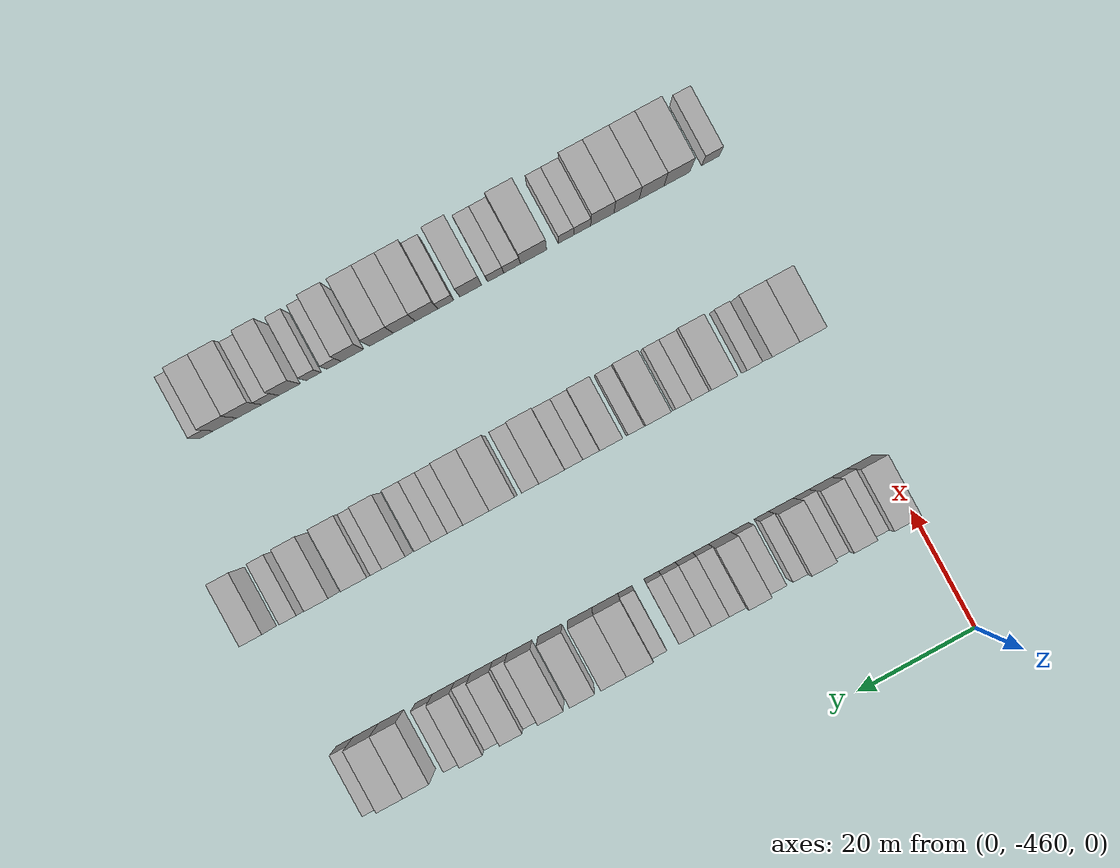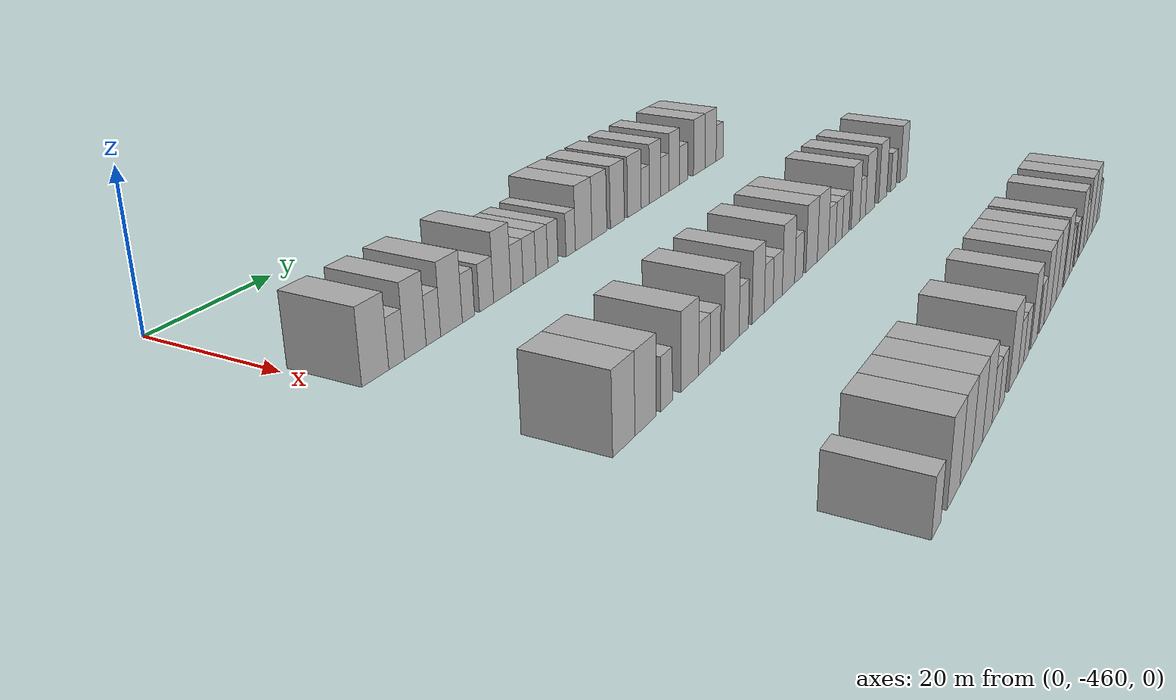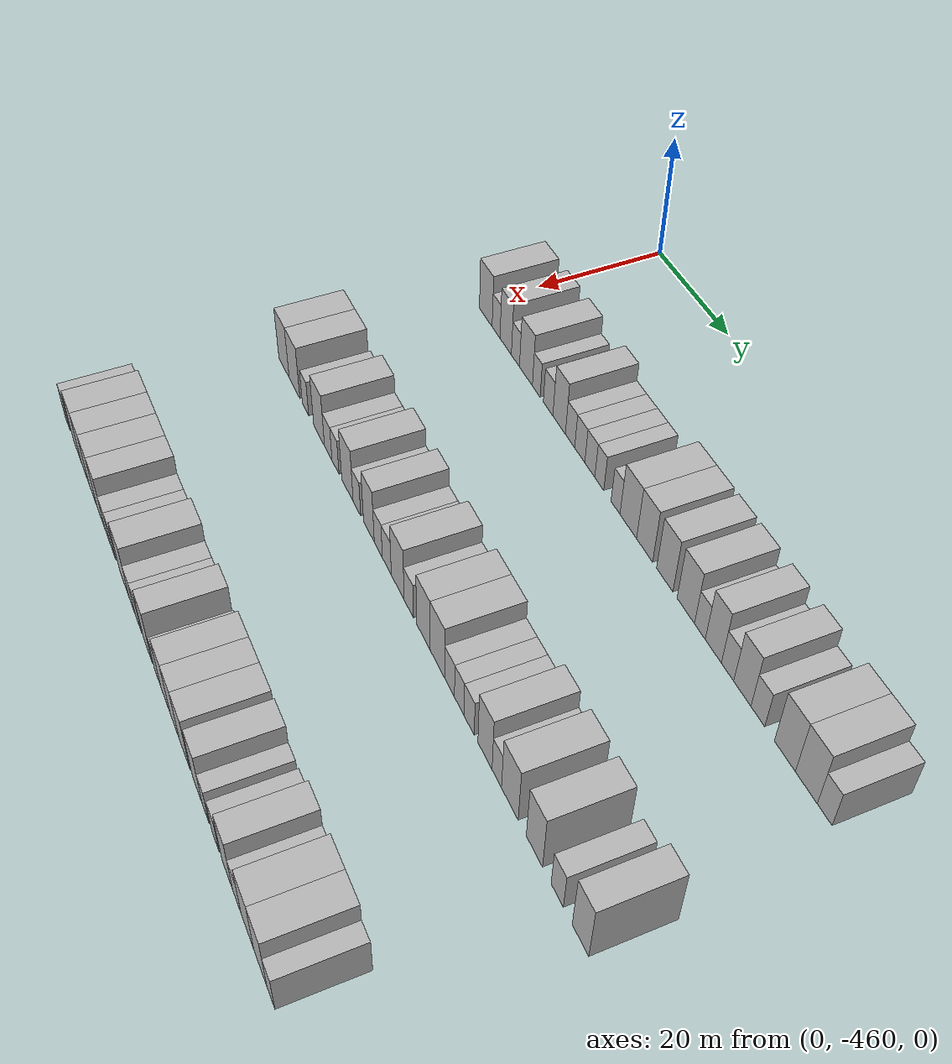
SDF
<sdf version="1.6">
 <world name="default">
  <model name="building_1">
   <static>1</static>
   <pose>25.0000 -456.7861 0 0.000000 0.000000 0.000000</pose>
   <link name="link">
    <pose>0 0 4.50 0 0 0</pose>
    <collision name="collision"><geometry><box><size>10.0000 4.4277 9.0000</size></box></geometry></collision>
    <visual name="visual">
     <cast_shadows>0</cast_shadows>
     <geometry><box><size>10.0000 4.4277 9.0000</size></box></geometry>
     <material>
      <script>
       <uri>model://HANNAS_wall/materials/scripts</uri>
       <uri>model://HANNAS_wall/materials/textures</uri>
       <name>vrc/HANNAS_wall</name>
      </script>
     </material>
    </visual>
   </link>
  </model>
  <model name="building_2">
   <static>1</static>
   <pose>25.0000 -453.2290 0 0.000000 0.000000 0.000000</pose>
   <link name="link">
    <pose>0 0 3.00 0 0 0</pose>
    <collision name="collision"><geometry><box><size>10.0000 2.6864 6.0000</size></box></geometry></collision>
    <visual name="visual">
     <cast_shadows>0</cast_shadows>
     <geometry><box><size>10.0000 2.6864 6.0000</size></box></geometry>
     <material>
      <script>
       <uri>model://HANNAS_wall/materials/scripts</uri>
       <uri>model://HANNAS_wall/materials/textures</uri>
       <name>vrc/HANNAS_wall</name>
      </script>
     </material>
    </visual>
   </link>
  </model>
  <model name="building_3">
   <static>1</static>
   <pose>25.0000 -449.9712 0 0.000000 0.000000 0.000000</pose>
   <link name="link">
    <pose>0 0 4.50 0 0 0</pose>
    <collision name="collision"><geometry><box><size>10.0000 3.8293 9.0000</size></box></geometry></collision>
    <visual name="visual">
     <cast_shadows>0</cast_shadows>
     <geometry><box><size>10.0000 3.8293 9.0000</size></box></geometry>
     <material>
      <script>
       <uri>model://HANNAS_wall/materials/scripts</uri>
       <uri>model://HANNAS_wall/materials/textures</uri>
       <name>vrc/HANNAS_wall</name>
      </script>
     </material>
    </visual>
   </link>
  </model>
  <model name="building_4">
   <static>1</static>
   <pose>25.0000 -446.7271 0 0.000000 0.000000 0.000000</pose>
   <link name="link">
    <pose>0 0 3.00 0 0 0</pose>
    <collision name="collision"><geometry><box><size>10.0000 2.6587 6.0000</size></box></geometry></collision>
    <visual name="visual">
     <cast_shadows>0</cast_shadows>
     <geometry><box><size>10.0000 2.6587 6.0000</size></box></geometry>
     <material>
      <script>
       <uri>model://HANNAS_wall/materials/scripts</uri>
       <uri>model://HANNAS_wall/materials/textures</uri>
       <name>vrc/HANNAS_wall</name>
      </script>
     </material>
    </visual>
   </link>
  </model>
  <model name="building_5">
   <static>1</static>
   <pose>25.0000 -443.3163 0 0.000000 0.000000 0.000000</pose>
   <link name="link">
    <pose>0 0 4.50 0 0 0</pose>
    <collision name="collision"><geometry><box><size>10.0000 4.1628 9.0000</size></box></geometry></collision>
    <visual name="visual">
     <cast_shadows>0</cast_shadows>
     <geometry><box><size>10.0000 4.1628 9.0000</size></box></geometry>
     <material>
      <script>
       <uri>model://HANNAS_wall/materials/scripts</uri>
       <uri>model://HANNAS_wall/materials/textures</uri>
       <name>vrc/HANNAS_wall</name>
      </script>
     </material>
    </visual>
   </link>
  </model>
  <model name="building_6">
   <static>1</static>
   <pose>25.0000 -440.0166 0 0.000000 0.000000 0.000000</pose>
   <link name="link">
    <pose>0 0 3.00 0 0 0</pose>
    <collision name="collision"><geometry><box><size>10.0000 2.4367 6.0000</size></box></geometry></collision>
    <visual name="visual">
     <cast_shadows>0</cast_shadows>
     <geometry><box><size>10.0000 2.4367 6.0000</size></box></geometry>
     <material>
      <script>
       <uri>model://HANNAS_wall/materials/scripts</uri>
       <uri>model://HANNAS_wall/materials/textures</uri>
       <name>vrc/HANNAS_wall</name>
      </script>
     </material>
    </visual>
   </link>
  </model>
  <model name="building_7">
   <static>1</static>
   <pose>25.0000 -436.3232 0 0.000000 0.000000 0.000000</pose>
   <link name="link">
    <pose>0 0 3.00 0 0 0</pose>
    <collision name="collision"><geometry><box><size>10.0000 2.9502 6.0000</size></box></geometry></collision>
    <visual name="visual">
     <cast_shadows>0</cast_shadows>
     <geometry><box><size>10.0000 2.9502 6.0000</size></box></geometry>
     <material>
      <script>
       <uri>model://HANNAS_wall/materials/scripts</uri>
       <uri>model://HANNAS_wall/materials/textures</uri>
       <name>vrc/HANNAS_wall</name>
      </script>
     </material>
    </visual>
   </link>
  </model>
  <model name="building_8">
   <static>1</static>
   <pose>25.0000 -432.9643 0 0.000000 0.000000 0.000000</pose>
   <link name="link">
    <pose>0 0 4.50 0 0 0</pose>
    <collision name="collision"><geometry><box><size>10.0000 3.7676 9.0000</size></box></geometry></collision>
    <visual name="visual">
     <cast_shadows>0</cast_shadows>
     <geometry><box><size>10.0000 3.7676 9.0000</size></box></geometry>
     <material>
      <script>
       <uri>model://HANNAS_wall/materials/scripts</uri>
       <uri>model://HANNAS_wall/materials/textures</uri>
       <name>vrc/HANNAS_wall</name>
      </script>
     </material>
    </visual>
   </link>
  </model>
  <model name="building_9">
   <static>1</static>
   <pose>25.0000 -429.7115 0 0.000000 0.000000 0.000000</pose>
   <link name="link">
    <pose>0 0 3.00 0 0 0</pose>
    <collision name="collision"><geometry><box><size>10.0000 2.7378 6.0000</size></box></geometry></collision>
    <visual name="visual">
     <cast_shadows>0</cast_shadows>
     <geometry><box><size>10.0000 2.7378 6.0000</size></box></geometry>
     <material>
      <script>
       <uri>model://HANNAS_wall/materials/scripts</uri>
       <uri>model://HANNAS_wall/materials/textures</uri>
       <name>vrc/HANNAS_wall</name>
      </script>
     </material>
    </visual>
   </link>
  </model>
  <model name="building_10">
   <static>1</static>
   <pose>25.0000 -426.8827 0 0.000000 0.000000 0.000000</pose>
   <link name="link">
    <pose>0 0 3.00 0 0 0</pose>
    <collision name="collision"><geometry><box><size>10.0000 2.9198 6.0000</size></box></geometry></collision>
    <visual name="visual">
     <cast_shadows>0</cast_shadows>
     <geometry><box><size>10.0000 2.9198 6.0000</size></box></geometry>
     <material>
      <script>
       <uri>model://HANNAS_wall/materials/scripts</uri>
       <uri>model://HANNAS_wall/materials/textures</uri>
       <name>vrc/HANNAS_wall</name>
      </script>
     </material>
    </visual>
   </link>
  </model>
  <model name="building_11">
   <static>1</static>
   <pose>25.0000 -424.0059 0 0.000000 0.000000 0.000000</pose>
   <link name="link">
    <pose>0 0 3.00 0 0 0</pose>
    <collision name="collision"><geometry><box><size>10.0000 2.8339 6.0000</size></box></geometry></collision>
    <visual name="visual">
     <cast_shadows>0</cast_shadows>
     <geometry><box><size>10.0000 2.8339 6.0000</size></box></geometry>
     <material>
      <script>
       <uri>model://HANNAS_wall/materials/scripts</uri>
       <uri>model://HANNAS_wall/materials/textures</uri>
       <name>vrc/HANNAS_wall</name>
      </script>
     </material>
    </visual>
   </link>
  </model>
  <model name="building_12">
   <static>1</static>
   <pose>25.0000 -421.3321 0 0.000000 0.000000 0.000000</pose>
   <link name="link">
    <pose>0 0 3.00 0 0 0</pose>
    <collision name="collision"><geometry><box><size>10.0000 2.5138 6.0000</size></box></geometry></collision>
    <visual name="visual">
     <cast_shadows>0</cast_shadows>
     <geometry><box><size>10.0000 2.5138 6.0000</size></box></geometry>
     <material>
      <script>
       <uri>model://HANNAS_wall/materials/scripts</uri>
       <uri>model://HANNAS_wall/materials/textures</uri>
       <name>vrc/HANNAS_wall</name>
      </script>
     </material>
    </visual>
   </link>
  </model>
  <model name="building_13">
   <static>1</static>
   <pose>25.0000 -416.8680 0 0.000000 0.000000 0.000000</pose>
   <link name="link">
    <pose>0 0 3.00 0 0 0</pose>
    <collision name="collision"><geometry><box><size>10.0000 2.4144 6.0000</size></box></geometry></collision>
    <visual name="visual">
     <cast_shadows>0</cast_shadows>
     <geometry><box><size>10.0000 2.4144 6.0000</size></box></geometry>
     <material>
      <script>
       <uri>model://HANNAS_wall/materials/scripts</uri>
       <uri>model://HANNAS_wall/materials/textures</uri>
       <name>vrc/HANNAS_wall</name>
      </script>
     </material>
    </visual>
   </link>
  </model>
  <model name="building_14">
   <static>1</static>
   <pose>25.0000 -413.4631 0 0.000000 0.000000 0.000000</pose>
   <link name="link">
    <pose>0 0 4.50 0 0 0</pose>
    <collision name="collision"><geometry><box><size>10.0000 4.3954 9.0000</size></box></geometry></collision>
    <visual name="visual">
     <cast_shadows>0</cast_shadows>
     <geometry><box><size>10.0000 4.3954 9.0000</size></box></geometry>
     <material>
      <script>
       <uri>model://HANNAS_wall/materials/scripts</uri>
       <uri>model://HANNAS_wall/materials/textures</uri>
       <name>vrc/HANNAS_wall</name>
      </script>
     </material>
    </visual>
   </link>
  </model>
  <model name="building_15">
   <static>1</static>
   <pose>25.0000 -409.2064 0 0.000000 0.000000 0.000000</pose>
   <link name="link">
    <pose>0 0 4.50 0 0 0</pose>
    <collision name="collision"><geometry><box><size>10.0000 4.1180 9.0000</size></box></geometry></collision>
    <visual name="visual">
     <cast_shadows>0</cast_shadows>
     <geometry><box><size>10.0000 4.1180 9.0000</size></box></geometry>
     <material>
      <script>
       <uri>model://HANNAS_wall/materials/scripts</uri>
       <uri>model://HANNAS_wall/materials/textures</uri>
       <name>vrc/HANNAS_wall</name>
      </script>
     </material>
    </visual>
   </link>
  </model>
  <model name="building_16">
   <static>1</static>
   <pose>25.0000 -404.1245 0 0.000000 0.000000 0.000000</pose>
   <link name="link">
    <pose>0 0 4.50 0 0 0</pose>
    <collision name="collision"><geometry><box><size>10.0000 4.0457 9.0000</size></box></geometry></collision>
    <visual name="visual">
     <cast_shadows>0</cast_shadows>
     <geometry><box><size>10.0000 4.0457 9.0000</size></box></geometry>
     <material>
      <script>
       <uri>model://HANNAS_wall/materials/scripts</uri>
       <uri>model://HANNAS_wall/materials/textures</uri>
       <name>vrc/HANNAS_wall</name>
      </script>
     </material>
    </visual>
   </link>
  </model>
  <model name="building_17">
   <static>1</static>
   <pose>25.0000 -399.0216 0 0.000000 0.000000 0.000000</pose>
   <link name="link">
    <pose>0 0 4.50 0 0 0</pose>
    <collision name="collision"><geometry><box><size>10.0000 4.1601 9.0000</size></box></geometry></collision>
    <visual name="visual">
     <cast_shadows>0</cast_shadows>
     <geometry><box><size>10.0000 4.1601 9.0000</size></box></geometry>
     <material>
      <script>
       <uri>model://HANNAS_wall/materials/scripts</uri>
       <uri>model://HANNAS_wall/materials/textures</uri>
       <name>vrc/HANNAS_wall</name>
      </script>
     </material>
    </visual>
   </link>
  </model>
  <model name="building_18">
   <static>1</static>
   <pose>25.0000 -395.6801 0 0.000000 0.000000 0.000000</pose>
   <link name="link">
    <pose>0 0 3.00 0 0 0</pose>
    <collision name="collision"><geometry><box><size>10.0000 2.5229 6.0000</size></box></geometry></collision>
    <visual name="visual">
     <cast_shadows>0</cast_shadows>
     <geometry><box><size>10.0000 2.5229 6.0000</size></box></geometry>
     <material>
      <script>
       <uri>model://HANNAS_wall/materials/scripts</uri>
       <uri>model://HANNAS_wall/materials/textures</uri>
       <name>vrc/HANNAS_wall</name>
      </script>
     </material>
    </visual>
   </link>
  </model>
  <model name="building_19">
   <static>1</static>
   <pose>25.0000 -392.5914 0 0.000000 0.000000 0.000000</pose>
   <link name="link">
    <pose>0 0 4.50 0 0 0</pose>
    <collision name="collision"><geometry><box><size>10.0000 3.6545 9.0000</size></box></geometry></collision>
    <visual name="visual">
     <cast_shadows>0</cast_shadows>
     <geometry><box><size>10.0000 3.6545 9.0000</size></box></geometry>
     <material>
      <script>
       <uri>model://HANNAS_wall/materials/scripts</uri>
       <uri>model://HANNAS_wall/materials/textures</uri>
       <name>vrc/HANNAS_wall</name>
      </script>
     </material>
    </visual>
   </link>
  </model>
  <model name="building_20">
   <static>1</static>
   <pose>25.0000 -389.3971 0 0.000000 0.000000 0.000000</pose>
   <link name="link">
    <pose>0 0 3.00 0 0 0</pose>
    <collision name="collision"><geometry><box><size>10.0000 2.7343 6.0000</size></box></geometry></collision>
    <visual name="visual">
     <cast_shadows>0</cast_shadows>
     <geometry><box><size>10.0000 2.7343 6.0000</size></box></geometry>
     <material>
      <script>
       <uri>model://HANNAS_wall/materials/scripts</uri>
       <uri>model://HANNAS_wall/materials/textures</uri>
       <name>vrc/HANNAS_wall</name>
      </script>
     </material>
    </visual>
   </link>
  </model>
  <model name="building_21">
   <static>1</static>
   <pose>25.0000 -386.1564 0 0.000000 0.000000 0.000000</pose>
   <link name="link">
    <pose>0 0 4.50 0 0 0</pose>
    <collision name="collision"><geometry><box><size>10.0000 3.7471 9.0000</size></box></geometry></collision>
    <visual name="visual">
     <cast_shadows>0</cast_shadows>
     <geometry><box><size>10.0000 3.7471 9.0000</size></box></geometry>
     <material>
      <script>
       <uri>model://HANNAS_wall/materials/scripts</uri>
       <uri>model://HANNAS_wall/materials/textures</uri>
       <name>vrc/HANNAS_wall</name>
      </script>
     </material>
    </visual>
   </link>
  </model>
  <model name="building_22">
   <static>1</static>
   <pose>25.0000 -382.8267 0 0.000000 0.000000 0.000000</pose>
   <link name="link">
    <pose>0 0 3.00 0 0 0</pose>
    <collision name="collision"><geometry><box><size>10.0000 2.9122 6.0000</size></box></geometry></collision>
    <visual name="visual">
     <cast_shadows>0</cast_shadows>
     <geometry><box><size>10.0000 2.9122 6.0000</size></box></geometry>
     <material>
      <script>
       <uri>model://HANNAS_wall/materials/scripts</uri>
       <uri>model://HANNAS_wall/materials/textures</uri>
       <name>vrc/HANNAS_wall</name>
      </script>
     </material>
    </visual>
   </link>
  </model>
  <model name="building_23">
   <static>1</static>
   <pose>25.0000 -377.2494 0 0.000000 0.000000 0.000000</pose>
   <link name="link">
    <pose>0 0 4.50 0 0 0</pose>
    <collision name="collision"><geometry><box><size>10.0000 4.2425 9.0000</size></box></geometry></collision>
    <visual name="visual">
     <cast_shadows>0</cast_shadows>
     <geometry><box><size>10.0000 4.2425 9.0000</size></box></geometry>
     <material>
      <script>
       <uri>model://HANNAS_wall/materials/scripts</uri>
       <uri>model://HANNAS_wall/materials/textures</uri>
       <name>vrc/HANNAS_wall</name>
      </script>
     </material>
    </visual>
   </link>
  </model>
  <model name="building_24">
   <static>1</static>
   <pose>25.0000 -372.9851 0 0.000000 0.000000 0.000000</pose>
   <link name="link">
    <pose>0 0 4.50 0 0 0</pose>
    <collision name="collision"><geometry><box><size>10.0000 4.2860 9.0000</size></box></geometry></collision>
    <visual name="visual">
     <cast_shadows>0</cast_shadows>
     <geometry><box><size>10.0000 4.2860 9.0000</size></box></geometry>
     <material>
      <script>
       <uri>model://HANNAS_wall/materials/scripts</uri>
       <uri>model://HANNAS_wall/materials/textures</uri>
       <name>vrc/HANNAS_wall</name>
      </script>
     </material>
    </visual>
   </link>
  </model>
  <model name="building_25">
   <static>1</static>
   <pose>25.0000 -369.4318 0 0.000000 0.000000 0.000000</pose>
   <link name="link">
    <pose>0 0 3.00 0 0 0</pose>
    <collision name="collision"><geometry><box><size>10.0000 2.8206 6.0000</size></box></geometry></collision>
    <visual name="visual">
     <cast_shadows>0</cast_shadows>
     <geometry><box><size>10.0000 2.8206 6.0000</size></box></geometry>
     <material>
      <script>
       <uri>model://HANNAS_wall/materials/scripts</uri>
       <uri>model://HANNAS_wall/materials/textures</uri>
       <name>vrc/HANNAS_wall</name>
      </script>
     </material>
    </visual>
   </link>
  </model>
  <model name="building_220">
   <static>1</static>
   <pose>55.0000 -457.7945 0 0.000000 0.000000 0.000000</pose>
   <link name="link">
    <pose>0 0 4.50 0 0 0</pose>
    <collision name="collision"><geometry><box><size>10.0000 4.4110 9.0000</size></box></geometry></collision>
    <visual name="visual">
     <cast_shadows>0</cast_shadows>
     <geometry><box><size>10.0000 4.4110 9.0000</size></box></geometry>
     <material>
      <script>
       <uri>model://HANNAS_wall/materials/scripts</uri>
       <uri>model://HANNAS_wall/materials/textures</uri>
       <name>vrc/HANNAS_wall</name>
      </script>
     </material>
    </visual>
   </link>
  </model>
  <model name="building_221">
   <static>1</static>
   <pose>55.0000 -453.3578 0 0.000000 0.000000 0.000000</pose>
   <link name="link">
    <pose>0 0 4.50 0 0 0</pose>
    <collision name="collision"><geometry><box><size>10.0000 4.4624 9.0000</size></box></geometry></collision>
    <visual name="visual">
     <cast_shadows>0</cast_shadows>
     <geometry><box><size>10.0000 4.4624 9.0000</size></box></geometry>
     <material>
      <script>
       <uri>model://HANNAS_wall/materials/scripts</uri>
       <uri>model://HANNAS_wall/materials/textures</uri>
       <name>vrc/HANNAS_wall</name>
      </script>
     </material>
    </visual>
   </link>
  </model>
  <model name="building_222">
   <static>1</static>
   <pose>55.0000 -448.8426 0 0.000000 0.000000 0.000000</pose>
   <link name="link">
    <pose>0 0 3.00 0 0 0</pose>
    <collision name="collision"><geometry><box><size>10.0000 2.5679 6.0000</size></box></geometry></collision>
    <visual name="visual">
     <cast_shadows>0</cast_shadows>
     <geometry><box><size>10.0000 2.5679 6.0000</size></box></geometry>
     <material>
      <script>
       <uri>model://HANNAS_wall/materials/scripts</uri>
       <uri>model://HANNAS_wall/materials/textures</uri>
       <name>vrc/HANNAS_wall</name>
      </script>
     </material>
    </visual>
   </link>
  </model>
  <model name="building_223">
   <static>1</static>
   <pose>55.0000 -443.4458 0 0.000000 0.000000 0.000000</pose>
   <link name="link">
    <pose>0 0 4.50 0 0 0</pose>
    <collision name="collision"><geometry><box><size>10.0000 4.2258 9.0000</size></box></geometry></collision>
    <visual name="visual">
     <cast_shadows>0</cast_shadows>
     <geometry><box><size>10.0000 4.2258 9.0000</size></box></geometry>
     <material>
      <script>
       <uri>model://HANNAS_wall/materials/scripts</uri>
       <uri>model://HANNAS_wall/materials/textures</uri>
       <name>vrc/HANNAS_wall</name>
      </script>
     </material>
    </visual>
   </link>
  </model>
  <model name="building_224">
   <static>1</static>
   <pose>55.0000 -439.9051 0 0.000000 0.000000 0.000000</pose>
   <link name="link">
    <pose>0 0 3.00 0 0 0</pose>
    <collision name="collision"><geometry><box><size>10.0000 2.8556 6.0000</size></box></geometry></collision>
    <visual name="visual">
     <cast_shadows>0</cast_shadows>
     <geometry><box><size>10.0000 2.8556 6.0000</size></box></geometry>
     <material>
      <script>
       <uri>model://HANNAS_wall/materials/scripts</uri>
       <uri>model://HANNAS_wall/materials/textures</uri>
       <name>vrc/HANNAS_wall</name>
      </script>
     </material>
    </visual>
   </link>
  </model>
  <model name="building_225">
   <static>1</static>
   <pose>55.0000 -437.1600 0 0.000000 0.000000 0.000000</pose>
   <link name="link">
    <pose>0 0 3.00 0 0 0</pose>
    <collision name="collision"><geometry><box><size>10.0000 2.6345 6.0000</size></box></geometry></collision>
    <visual name="visual">
     <cast_shadows>0</cast_shadows>
     <geometry><box><size>10.0000 2.6345 6.0000</size></box></geometry>
     <material>
      <script>
       <uri>model://HANNAS_wall/materials/scripts</uri>
       <uri>model://HANNAS_wall/materials/textures</uri>
       <name>vrc/HANNAS_wall</name>
      </script>
     </material>
    </visual>
   </link>
  </model>
  <model name="building_226">
   <static>1</static>
   <pose>55.0000 -432.7730 0 0.000000 0.000000 0.000000</pose>
   <link name="link">
    <pose>0 0 4.50 0 0 0</pose>
    <collision name="collision"><geometry><box><size>10.0000 4.1395 9.0000</size></box></geometry></collision>
    <visual name="visual">
     <cast_shadows>0</cast_shadows>
     <geometry><box><size>10.0000 4.1395 9.0000</size></box></geometry>
     <material>
      <script>
       <uri>model://HANNAS_wall/materials/scripts</uri>
       <uri>model://HANNAS_wall/materials/textures</uri>
       <name>vrc/HANNAS_wall</name>
      </script>
     </material>
    </visual>
   </link>
  </model>
  <model name="building_227">
   <static>1</static>
   <pose>55.0000 -429.3538 0 0.000000 0.000000 0.000000</pose>
   <link name="link">
    <pose>0 0 3.00 0 0 0</pose>
    <collision name="collision"><geometry><box><size>10.0000 2.6989 6.0000</size></box></geometry></collision>
    <visual name="visual">
     <cast_shadows>0</cast_shadows>
     <geometry><box><size>10.0000 2.6989 6.0000</size></box></geometry>
     <material>
      <script>
       <uri>model://HANNAS_wall/materials/scripts</uri>
       <uri>model://HANNAS_wall/materials/textures</uri>
       <name>vrc/HANNAS_wall</name>
      </script>
     </material>
    </visual>
   </link>
  </model>
  <model name="building_228">
   <static>1</static>
   <pose>55.0000 -425.1554 0 0.000000 0.000000 0.000000</pose>
   <link name="link">
    <pose>0 0 4.50 0 0 0</pose>
    <collision name="collision"><geometry><box><size>10.0000 3.6978 9.0000</size></box></geometry></collision>
    <visual name="visual">
     <cast_shadows>0</cast_shadows>
     <geometry><box><size>10.0000 3.6978 9.0000</size></box></geometry>
     <material>
      <script>
       <uri>model://HANNAS_wall/materials/scripts</uri>
       <uri>model://HANNAS_wall/materials/textures</uri>
       <name>vrc/HANNAS_wall</name>
      </script>
     </material>
    </visual>
   </link>
  </model>
  <model name="building_229">
   <static>1</static>
   <pose>55.0000 -421.9440 0 0.000000 0.000000 0.000000</pose>
   <link name="link">
    <pose>0 0 3.00 0 0 0</pose>
    <collision name="collision"><geometry><box><size>10.0000 2.7250 6.0000</size></box></geometry></collision>
    <visual name="visual">
     <cast_shadows>0</cast_shadows>
     <geometry><box><size>10.0000 2.7250 6.0000</size></box></geometry>
     <material>
      <script>
       <uri>model://HANNAS_wall/materials/scripts</uri>
       <uri>model://HANNAS_wall/materials/textures</uri>
       <name>vrc/HANNAS_wall</name>
      </script>
     </material>
    </visual>
   </link>
  </model>
  <model name="building_230">
   <static>1</static>
   <pose>55.0000 -419.0939 0 0.000000 0.000000 0.000000</pose>
   <link name="link">
    <pose>0 0 3.00 0 0 0</pose>
    <collision name="collision"><geometry><box><size>10.0000 2.9752 6.0000</size></box></geometry></collision>
    <visual name="visual">
     <cast_shadows>0</cast_shadows>
     <geometry><box><size>10.0000 2.9752 6.0000</size></box></geometry>
     <material>
      <script>
       <uri>model://HANNAS_wall/materials/scripts</uri>
       <uri>model://HANNAS_wall/materials/textures</uri>
       <name>vrc/HANNAS_wall</name>
      </script>
     </material>
    </visual>
   </link>
  </model>
  <model name="building_231">
   <static>1</static>
   <pose>55.0000 -415.5276 0 0.000000 0.000000 0.000000</pose>
   <link name="link">
    <pose>0 0 4.50 0 0 0</pose>
    <collision name="collision"><geometry><box><size>10.0000 4.1574 9.0000</size></box></geometry></collision>
    <visual name="visual">
     <cast_shadows>0</cast_shadows>
     <geometry><box><size>10.0000 4.1574 9.0000</size></box></geometry>
     <material>
      <script>
       <uri>model://HANNAS_wall/materials/scripts</uri>
       <uri>model://HANNAS_wall/materials/textures</uri>
       <name>vrc/HANNAS_wall</name>
      </script>
     </material>
    </visual>
   </link>
  </model>
  <model name="building_232">
   <static>1</static>
   <pose>55.0000 -411.9858 0 0.000000 0.000000 0.000000</pose>
   <link name="link">
    <pose>0 0 3.00 0 0 0</pose>
    <collision name="collision"><geometry><box><size>10.0000 2.9262 6.0000</size></box></geometry></collision>
    <visual name="visual">
     <cast_shadows>0</cast_shadows>
     <geometry><box><size>10.0000 2.9262 6.0000</size></box></geometry>
     <material>
      <script>
       <uri>model://HANNAS_wall/materials/scripts</uri>
       <uri>model://HANNAS_wall/materials/textures</uri>
       <name>vrc/HANNAS_wall</name>
      </script>
     </material>
    </visual>
   </link>
  </model>
  <model name="building_233">
   <static>1</static>
   <pose>55.0000 -407.4648 0 0.000000 0.000000 0.000000</pose>
   <link name="link">
    <pose>0 0 4.50 0 0 0</pose>
    <collision name="collision"><geometry><box><size>10.0000 4.1158 9.0000</size></box></geometry></collision>
    <visual name="visual">
     <cast_shadows>0</cast_shadows>
     <geometry><box><size>10.0000 4.1158 9.0000</size></box></geometry>
     <material>
      <script>
       <uri>model://HANNAS_wall/materials/scripts</uri>
       <uri>model://HANNAS_wall/materials/textures</uri>
       <name>vrc/HANNAS_wall</name>
      </script>
     </material>
    </visual>
   </link>
  </model>
  <model name="building_234">
   <static>1</static>
   <pose>55.0000 -403.3029 0 0.000000 0.000000 0.000000</pose>
   <link name="link">
    <pose>0 0 4.50 0 0 0</pose>
    <collision name="collision"><geometry><box><size>10.0000 4.2080 9.0000</size></box></geometry></collision>
    <visual name="visual">
     <cast_shadows>0</cast_shadows>
     <geometry><box><size>10.0000 4.2080 9.0000</size></box></geometry>
     <material>
      <script>
       <uri>model://HANNAS_wall/materials/scripts</uri>
       <uri>model://HANNAS_wall/materials/textures</uri>
       <name>vrc/HANNAS_wall</name>
      </script>
     </material>
    </visual>
   </link>
  </model>
  <model name="building_235">
   <static>1</static>
   <pose>55.0000 -399.7705 0 0.000000 0.000000 0.000000</pose>
   <link name="link">
    <pose>0 0 3.00 0 0 0</pose>
    <collision name="collision"><geometry><box><size>10.0000 2.8567 6.0000</size></box></geometry></collision>
    <visual name="visual">
     <cast_shadows>0</cast_shadows>
     <geometry><box><size>10.0000 2.8567 6.0000</size></box></geometry>
     <material>
      <script>
       <uri>model://HANNAS_wall/materials/scripts</uri>
       <uri>model://HANNAS_wall/materials/textures</uri>
       <name>vrc/HANNAS_wall</name>
      </script>
     </material>
    </visual>
   </link>
  </model>
  <model name="building_236">
   <static>1</static>
   <pose>55.0000 -396.9990 0 0.000000 0.000000 0.000000</pose>
   <link name="link">
    <pose>0 0 3.00 0 0 0</pose>
    <collision name="collision"><geometry><box><size>10.0000 2.6861 6.0000</size></box></geometry></collision>
    <visual name="visual">
     <cast_shadows>0</cast_shadows>
     <geometry><box><size>10.0000 2.6861 6.0000</size></box></geometry>
     <material>
      <script>
       <uri>model://HANNAS_wall/materials/scripts</uri>
       <uri>model://HANNAS_wall/materials/textures</uri>
       <name>vrc/HANNAS_wall</name>
      </script>
     </material>
    </visual>
   </link>
  </model>
  <model name="building_237">
   <static>1</static>
   <pose>55.0000 -394.2551 0 0.000000 0.000000 0.000000</pose>
   <link name="link">
    <pose>0 0 3.00 0 0 0</pose>
    <collision name="collision"><geometry><box><size>10.0000 2.8019 6.0000</size></box></geometry></collision>
    <visual name="visual">
     <cast_shadows>0</cast_shadows>
     <geometry><box><size>10.0000 2.8019 6.0000</size></box></geometry>
     <material>
      <script>
       <uri>model://HANNAS_wall/materials/scripts</uri>
       <uri>model://HANNAS_wall/materials/textures</uri>
       <name>vrc/HANNAS_wall</name>
      </script>
     </material>
    </visual>
   </link>
  </model>
  <model name="building_238">
   <static>1</static>
   <pose>55.0000 -389.9732 0 0.000000 0.000000 0.000000</pose>
   <link name="link">
    <pose>0 0 4.50 0 0 0</pose>
    <collision name="collision"><geometry><box><size>10.0000 3.7619 9.0000</size></box></geometry></collision>
    <visual name="visual">
     <cast_shadows>0</cast_shadows>
     <geometry><box><size>10.0000 3.7619 9.0000</size></box></geometry>
     <material>
      <script>
       <uri>model://HANNAS_wall/materials/scripts</uri>
       <uri>model://HANNAS_wall/materials/textures</uri>
       <name>vrc/HANNAS_wall</name>
      </script>
     </material>
    </visual>
   </link>
  </model>
  <model name="building_239">
   <static>1</static>
   <pose>55.0000 -386.8666 0 0.000000 0.000000 0.000000</pose>
   <link name="link">
    <pose>0 0 3.00 0 0 0</pose>
    <collision name="collision"><geometry><box><size>10.0000 2.4513 6.0000</size></box></geometry></collision>
    <visual name="visual">
     <cast_shadows>0</cast_shadows>
     <geometry><box><size>10.0000 2.4513 6.0000</size></box></geometry>
     <material>
      <script>
       <uri>model://HANNAS_wall/materials/scripts</uri>
       <uri>model://HANNAS_wall/materials/textures</uri>
       <name>vrc/HANNAS_wall</name>
      </script>
     </material>
    </visual>
   </link>
  </model>
  <model name="building_240">
   <static>1</static>
   <pose>55.0000 -383.5284 0 0.000000 0.000000 0.000000</pose>
   <link name="link">
    <pose>0 0 4.50 0 0 0</pose>
    <collision name="collision"><geometry><box><size>10.0000 4.2251 9.0000</size></box></geometry></collision>
    <visual name="visual">
     <cast_shadows>0</cast_shadows>
     <geometry><box><size>10.0000 4.2251 9.0000</size></box></geometry>
     <material>
      <script>
       <uri>model://HANNAS_wall/materials/scripts</uri>
       <uri>model://HANNAS_wall/materials/textures</uri>
       <name>vrc/HANNAS_wall</name>
      </script>
     </material>
    </visual>
   </link>
  </model>
  <model name="building_241">
   <static>1</static>
   <pose>55.0000 -377.4638 0 0.000000 0.000000 0.000000</pose>
   <link name="link">
    <pose>0 0 4.50 0 0 0</pose>
    <collision name="collision"><geometry><box><size>10.0000 3.9042 9.0000</size></box></geometry></collision>
    <visual name="visual">
     <cast_shadows>0</cast_shadows>
     <geometry><box><size>10.0000 3.9042 9.0000</size></box></geometry>
     <material>
      <script>
       <uri>model://HANNAS_wall/materials/scripts</uri>
       <uri>model://HANNAS_wall/materials/textures</uri>
       <name>vrc/HANNAS_wall</name>
      </script>
     </material>
    </visual>
   </link>
  </model>
  <model name="building_242">
   <static>1</static>
   <pose>55.0000 -372.1030 0 0.000000 0.000000 0.000000</pose>
   <link name="link">
    <pose>0 0 3.00 0 0 0</pose>
    <collision name="collision"><geometry><box><size>10.0000 2.8173 6.0000</size></box></geometry></collision>
    <visual name="visual">
     <cast_shadows>0</cast_shadows>
     <geometry><box><size>10.0000 2.8173 6.0000</size></box></geometry>
     <material>
      <script>
       <uri>model://HANNAS_wall/materials/scripts</uri>
       <uri>model://HANNAS_wall/materials/textures</uri>
       <name>vrc/HANNAS_wall</name>
      </script>
     </material>
    </visual>
   </link>
  </model>
  <model name="building_243">
   <static>1</static>
   <pose>55.0000 -366.8706 0 0.000000 0.000000 0.000000</pose>
   <link name="link">
    <pose>0 0 4.50 0 0 0</pose>
    <collision name="collision"><geometry><box><size>10.0000 3.6475 9.0000</size></box></geometry></collision>
    <visual name="visual">
     <cast_shadows>0</cast_shadows>
     <geometry><box><size>10.0000 3.6475 9.0000</size></box></geometry>
     <material>
      <script>
       <uri>model://HANNAS_wall/materials/scripts</uri>
       <uri>model://HANNAS_wall/materials/textures</uri>
       <name>vrc/HANNAS_wall</name>
      </script>
     </material>
    </visual>
   </link>
  </model>
  <model name="building_448">
   <static>1</static>
   <pose>85.0000 -458.5285 0 0.000000 0.000000 0.000000</pose>
   <link name="link">
    <pose>0 0 3.00 0 0 0</pose>
    <collision name="collision"><geometry><box><size>10.0000 2.9429 6.0000</size></box></geometry></collision>
    <visual name="visual">
     <cast_shadows>0</cast_shadows>
     <geometry><box><size>10.0000 2.9429 6.0000</size></box></geometry>
     <material>
      <script>
       <uri>model://HANNAS_wall/materials/scripts</uri>
       <uri>model://HANNAS_wall/materials/textures</uri>
       <name>vrc/HANNAS_wall</name>
      </script>
     </material>
    </visual>
   </link>
  </model>
  <model name="building_449">
   <static>1</static>
   <pose>85.0000 -452.8520 0 0.000000 0.000000 0.000000</pose>
   <link name="link">
    <pose>0 0 4.50 0 0 0</pose>
    <collision name="collision"><geometry><box><size>10.0000 4.4103 9.0000</size></box></geometry></collision>
    <visual name="visual">
     <cast_shadows>0</cast_shadows>
     <geometry><box><size>10.0000 4.4103 9.0000</size></box></geometry>
     <material>
      <script>
       <uri>model://HANNAS_wall/materials/scripts</uri>
       <uri>model://HANNAS_wall/materials/textures</uri>
       <name>vrc/HANNAS_wall</name>
      </script>
     </material>
    </visual>
   </link>
  </model>
  <model name="building_450">
   <static>1</static>
   <pose>85.0000 -448.5508 0 0.000000 0.000000 0.000000</pose>
   <link name="link">
    <pose>0 0 4.50 0 0 0</pose>
    <collision name="collision"><geometry><box><size>10.0000 4.1920 9.0000</size></box></geometry></collision>
    <visual name="visual">
     <cast_shadows>0</cast_shadows>
     <geometry><box><size>10.0000 4.1920 9.0000</size></box></geometry>
     <material>
      <script>
       <uri>model://HANNAS_wall/materials/scripts</uri>
       <uri>model://HANNAS_wall/materials/textures</uri>
       <name>vrc/HANNAS_wall</name>
      </script>
     </material>
    </visual>
   </link>
  </model>
  <model name="building_451">
   <static>1</static>
   <pose>85.0000 -444.3164 0 0.000000 0.000000 0.000000</pose>
   <link name="link">
    <pose>0 0 4.50 0 0 0</pose>
    <collision name="collision"><geometry><box><size>10.0000 4.2768 9.0000</size></box></geometry></collision>
    <visual name="visual">
     <cast_shadows>0</cast_shadows>
     <geometry><box><size>10.0000 4.2768 9.0000</size></box></geometry>
     <material>
      <script>
       <uri>model://HANNAS_wall/materials/scripts</uri>
       <uri>model://HANNAS_wall/materials/textures</uri>
       <name>vrc/HANNAS_wall</name>
      </script>
     </material>
    </visual>
   </link>
  </model>
  <model name="building_452">
   <static>1</static>
   <pose>85.0000 -440.2115 0 0.000000 0.000000 0.000000</pose>
   <link name="link">
    <pose>0 0 4.50 0 0 0</pose>
    <collision name="collision"><geometry><box><size>10.0000 3.9330 9.0000</size></box></geometry></collision>
    <visual name="visual">
     <cast_shadows>0</cast_shadows>
     <geometry><box><size>10.0000 3.9330 9.0000</size></box></geometry>
     <material>
      <script>
       <uri>model://HANNAS_wall/materials/scripts</uri>
       <uri>model://HANNAS_wall/materials/textures</uri>
       <name>vrc/HANNAS_wall</name>
      </script>
     </material>
    </visual>
   </link>
  </model>
  <model name="building_453">
   <static>1</static>
   <pose>85.0000 -436.7983 0 0.000000 0.000000 0.000000</pose>
   <link name="link">
    <pose>0 0 3.00 0 0 0</pose>
    <collision name="collision"><geometry><box><size>10.0000 2.8934 6.0000</size></box></geometry></collision>
    <visual name="visual">
     <cast_shadows>0</cast_shadows>
     <geometry><box><size>10.0000 2.8934 6.0000</size></box></geometry>
     <material>
      <script>
       <uri>model://HANNAS_wall/materials/scripts</uri>
       <uri>model://HANNAS_wall/materials/textures</uri>
       <name>vrc/HANNAS_wall</name>
      </script>
     </material>
    </visual>
   </link>
  </model>
  <model name="building_454">
   <static>1</static>
   <pose>85.0000 -434.0775 0 0.000000 0.000000 0.000000</pose>
   <link name="link">
    <pose>0 0 3.00 0 0 0</pose>
    <collision name="collision"><geometry><box><size>10.0000 2.5481 6.0000</size></box></geometry></collision>
    <visual name="visual">
     <cast_shadows>0</cast_shadows>
     <geometry><box><size>10.0000 2.5481 6.0000</size></box></geometry>
     <material>
      <script>
       <uri>model://HANNAS_wall/materials/scripts</uri>
       <uri>model://HANNAS_wall/materials/textures</uri>
       <name>vrc/HANNAS_wall</name>
      </script>
     </material>
    </visual>
   </link>
  </model>
  <model name="building_455">
   <static>1</static>
   <pose>85.0000 -428.5783 0 0.000000 0.000000 0.000000</pose>
   <link name="link">
    <pose>0 0 4.50 0 0 0</pose>
    <collision name="collision"><geometry><box><size>10.0000 4.4504 9.0000</size></box></geometry></collision>
    <visual name="visual">
     <cast_shadows>0</cast_shadows>
     <geometry><box><size>10.0000 4.4504 9.0000</size></box></geometry>
     <material>
      <script>
       <uri>model://HANNAS_wall/materials/scripts</uri>
       <uri>model://HANNAS_wall/materials/textures</uri>
       <name>vrc/HANNAS_wall</name>
      </script>
     </material>
    </visual>
   </link>
  </model>
  <model name="building_456">
   <static>1</static>
   <pose>85.0000 -424.9493 0 0.000000 0.000000 0.000000</pose>
   <link name="link">
    <pose>0 0 3.00 0 0 0</pose>
    <collision name="collision"><geometry><box><size>10.0000 2.8076 6.0000</size></box></geometry></collision>
    <visual name="visual">
     <cast_shadows>0</cast_shadows>
     <geometry><box><size>10.0000 2.8076 6.0000</size></box></geometry>
     <material>
      <script>
       <uri>model://HANNAS_wall/materials/scripts</uri>
       <uri>model://HANNAS_wall/materials/textures</uri>
       <name>vrc/HANNAS_wall</name>
      </script>
     </material>
    </visual>
   </link>
  </model>
  <model name="building_457">
   <static>1</static>
   <pose>85.0000 -422.1770 0 0.000000 0.000000 0.000000</pose>
   <link name="link">
    <pose>0 0 3.00 0 0 0</pose>
    <collision name="collision"><geometry><box><size>10.0000 2.7371 6.0000</size></box></geometry></collision>
    <visual name="visual">
     <cast_shadows>0</cast_shadows>
     <geometry><box><size>10.0000 2.7371 6.0000</size></box></geometry>
     <material>
      <script>
       <uri>model://HANNAS_wall/materials/scripts</uri>
       <uri>model://HANNAS_wall/materials/textures</uri>
       <name>vrc/HANNAS_wall</name>
      </script>
     </material>
    </visual>
   </link>
  </model>
  <model name="building_458">
   <static>1</static>
   <pose>85.0000 -417.9551 0 0.000000 0.000000 0.000000</pose>
   <link name="link">
    <pose>0 0 4.50 0 0 0</pose>
    <collision name="collision"><geometry><box><size>10.0000 3.7068 9.0000</size></box></geometry></collision>
    <visual name="visual">
     <cast_shadows>0</cast_shadows>
     <geometry><box><size>10.0000 3.7068 9.0000</size></box></geometry>
     <material>
      <script>
       <uri>model://HANNAS_wall/materials/scripts</uri>
       <uri>model://HANNAS_wall/materials/textures</uri>
       <name>vrc/HANNAS_wall</name>
      </script>
     </material>
    </visual>
   </link>
  </model>
  <model name="building_459">
   <static>1</static>
   <pose>85.0000 -413.7467 0 0.000000 0.000000 0.000000</pose>
   <link name="link">
    <pose>0 0 3.00 0 0 0</pose>
    <collision name="collision"><geometry><box><size>10.0000 2.7101 6.0000</size></box></geometry></collision>
    <visual name="visual">
     <cast_shadows>0</cast_shadows>
     <geometry><box><size>10.0000 2.7101 6.0000</size></box></geometry>
     <material>
      <script>
       <uri>model://HANNAS_wall/materials/scripts</uri>
       <uri>model://HANNAS_wall/materials/textures</uri>
       <name>vrc/HANNAS_wall</name>
      </script>
     </material>
    </visual>
   </link>
  </model>
  <model name="building_460">
   <static>1</static>
   <pose>85.0000 -410.4742 0 0.000000 0.000000 0.000000</pose>
   <link name="link">
    <pose>0 0 4.50 0 0 0</pose>
    <collision name="collision"><geometry><box><size>10.0000 3.8348 9.0000</size></box></geometry></collision>
    <visual name="visual">
     <cast_shadows>0</cast_shadows>
     <geometry><box><size>10.0000 3.8348 9.0000</size></box></geometry>
     <material>
      <script>
       <uri>model://HANNAS_wall/materials/scripts</uri>
       <uri>model://HANNAS_wall/materials/textures</uri>
       <name>vrc/HANNAS_wall</name>
      </script>
     </material>
    </visual>
   </link>
  </model>
  <model name="building_461">
   <static>1</static>
   <pose>85.0000 -406.7035 0 0.000000 0.000000 0.000000</pose>
   <link name="link">
    <pose>0 0 4.50 0 0 0</pose>
    <collision name="collision"><geometry><box><size>10.0000 3.7065 9.0000</size></box></geometry></collision>
    <visual name="visual">
     <cast_shadows>0</cast_shadows>
     <geometry><box><size>10.0000 3.7065 9.0000</size></box></geometry>
     <material>
      <script>
       <uri>model://HANNAS_wall/materials/scripts</uri>
       <uri>model://HANNAS_wall/materials/textures</uri>
       <name>vrc/HANNAS_wall</name>
      </script>
     </material>
    </visual>
   </link>
  </model>
  <model name="building_462">
   <static>1</static>
   <pose>85.0000 -402.8193 0 0.000000 0.000000 0.000000</pose>
   <link name="link">
    <pose>0 0 4.50 0 0 0</pose>
    <collision name="collision"><geometry><box><size>10.0000 4.0619 9.0000</size></box></geometry></collision>
    <visual name="visual">
     <cast_shadows>0</cast_shadows>
     <geometry><box><size>10.0000 4.0619 9.0000</size></box></geometry>
     <material>
      <script>
       <uri>model://HANNAS_wall/materials/scripts</uri>
       <uri>model://HANNAS_wall/materials/textures</uri>
       <name>vrc/HANNAS_wall</name>
      </script>
     </material>
    </visual>
   </link>
  </model>
  <model name="building_463">
   <static>1</static>
   <pose>85.0000 -397.9049 0 0.000000 0.000000 0.000000</pose>
   <link name="link">
    <pose>0 0 4.50 0 0 0</pose>
    <collision name="collision"><geometry><box><size>10.0000 3.7669 9.0000</size></box></geometry></collision>
    <visual name="visual">
     <cast_shadows>0</cast_shadows>
     <geometry><box><size>10.0000 3.7669 9.0000</size></box></geometry>
     <material>
      <script>
       <uri>model://HANNAS_wall/materials/scripts</uri>
       <uri>model://HANNAS_wall/materials/textures</uri>
       <name>vrc/HANNAS_wall</name>
      </script>
     </material>
    </visual>
   </link>
  </model>
  <model name="building_464">
   <static>1</static>
   <pose>85.0000 -394.8202 0 0.000000 0.000000 0.000000</pose>
   <link name="link">
    <pose>0 0 3.00 0 0 0</pose>
    <collision name="collision"><geometry><box><size>10.0000 2.4025 6.0000</size></box></geometry></collision>
    <visual name="visual">
     <cast_shadows>0</cast_shadows>
     <geometry><box><size>10.0000 2.4025 6.0000</size></box></geometry>
     <material>
      <script>
       <uri>model://HANNAS_wall/materials/scripts</uri>
       <uri>model://HANNAS_wall/materials/textures</uri>
       <name>vrc/HANNAS_wall</name>
      </script>
     </material>
    </visual>
   </link>
  </model>
  <model name="building_465">
   <static>1</static>
   <pose>85.0000 -391.3282 0 0.000000 0.000000 0.000000</pose>
   <link name="link">
    <pose>0 0 3.00 0 0 0</pose>
    <collision name="collision"><geometry><box><size>10.0000 2.5816 6.0000</size></box></geometry></collision>
    <visual name="visual">
     <cast_shadows>0</cast_shadows>
     <geometry><box><size>10.0000 2.5816 6.0000</size></box></geometry>
     <material>
      <script>
       <uri>model://HANNAS_wall/materials/scripts</uri>
       <uri>model://HANNAS_wall/materials/textures</uri>
       <name>vrc/HANNAS_wall</name>
      </script>
     </material>
    </visual>
   </link>
  </model>
  <model name="building_466">
   <static>1</static>
   <pose>85.0000 -387.2281 0 0.000000 0.000000 0.000000</pose>
   <link name="link">
    <pose>0 0 4.50 0 0 0</pose>
    <collision name="collision"><geometry><box><size>10.0000 3.6187 9.0000</size></box></geometry></collision>
    <visual name="visual">
     <cast_shadows>0</cast_shadows>
     <geometry><box><size>10.0000 3.6187 9.0000</size></box></geometry>
     <material>
      <script>
       <uri>model://HANNAS_wall/materials/scripts</uri>
       <uri>model://HANNAS_wall/materials/textures</uri>
       <name>vrc/HANNAS_wall</name>
      </script>
     </material>
    </visual>
   </link>
  </model>
  <model name="building_467">
   <static>1</static>
   <pose>85.0000 -383.9827 0 0.000000 0.000000 0.000000</pose>
   <link name="link">
    <pose>0 0 3.00 0 0 0</pose>
    <collision name="collision"><geometry><box><size>10.0000 2.8720 6.0000</size></box></geometry></collision>
    <visual name="visual">
     <cast_shadows>0</cast_shadows>
     <geometry><box><size>10.0000 2.8720 6.0000</size></box></geometry>
     <material>
      <script>
       <uri>model://HANNAS_wall/materials/scripts</uri>
       <uri>model://HANNAS_wall/materials/textures</uri>
       <name>vrc/HANNAS_wall</name>
      </script>
     </material>
    </visual>
   </link>
  </model>
  <model name="building_468">
   <static>1</static>
   <pose>85.0000 -380.4733 0 0.000000 0.000000 0.000000</pose>
   <link name="link">
    <pose>0 0 4.50 0 0 0</pose>
    <collision name="collision"><geometry><box><size>10.0000 4.1468 9.0000</size></box></geometry></collision>
    <visual name="visual">
     <cast_shadows>0</cast_shadows>
     <geometry><box><size>10.0000 4.1468 9.0000</size></box></geometry>
     <material>
      <script>
       <uri>model://HANNAS_wall/materials/scripts</uri>
       <uri>model://HANNAS_wall/materials/textures</uri>
       <name>vrc/HANNAS_wall</name>
      </script>
     </material>
    </visual>
   </link>
  </model>
  <model name="building_469">
   <static>1</static>
   <pose>85.0000 -376.3856 0 0.000000 0.000000 0.000000</pose>
   <link name="link">
    <pose>0 0 4.50 0 0 0</pose>
    <collision name="collision"><geometry><box><size>10.0000 4.0287 9.0000</size></box></geometry></collision>
    <visual name="visual">
     <cast_shadows>0</cast_shadows>
     <geometry><box><size>10.0000 4.0287 9.0000</size></box></geometry>
     <material>
      <script>
       <uri>model://HANNAS_wall/materials/scripts</uri>
       <uri>model://HANNAS_wall/materials/textures</uri>
       <name>vrc/HANNAS_wall</name>
      </script>
     </material>
    </visual>
   </link>
  </model>
  <model name="building_470">
   <static>1</static>
   <pose>85.0000 -373.1642 0 0.000000 0.000000 0.000000</pose>
   <link name="link">
    <pose>0 0 3.00 0 0 0</pose>
    <collision name="collision"><geometry><box><size>10.0000 2.4139 6.0000</size></box></geometry></collision>
    <visual name="visual">
     <cast_shadows>0</cast_shadows>
     <geometry><box><size>10.0000 2.4139 6.0000</size></box></geometry>
     <material>
      <script>
       <uri>model://HANNAS_wall/materials/scripts</uri>
       <uri>model://HANNAS_wall/materials/textures</uri>
       <name>vrc/HANNAS_wall</name>
      </script>
     </material>
    </visual>
   </link>
  </model>
 </world>
</sdf>
